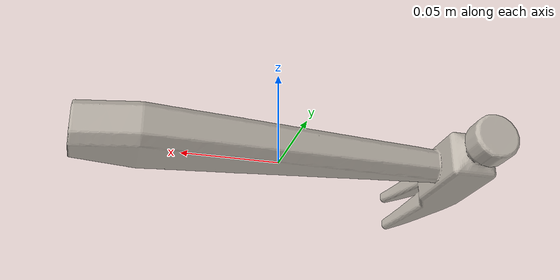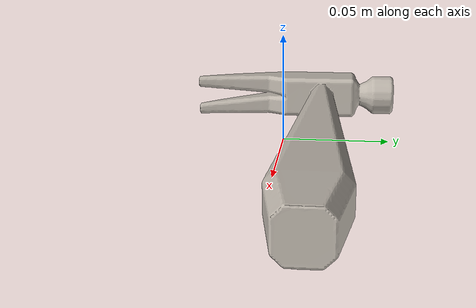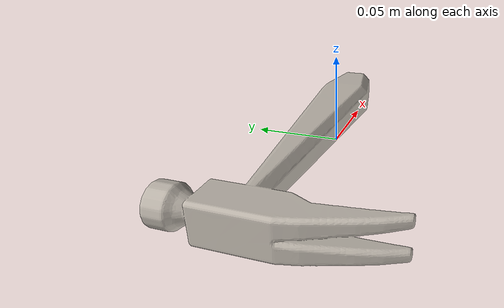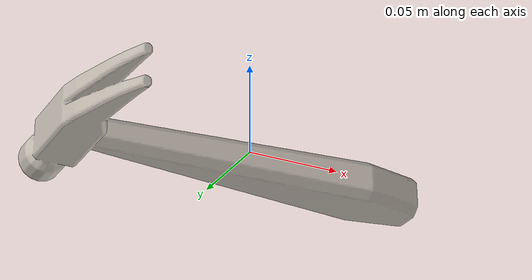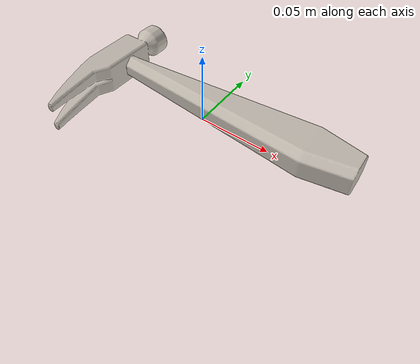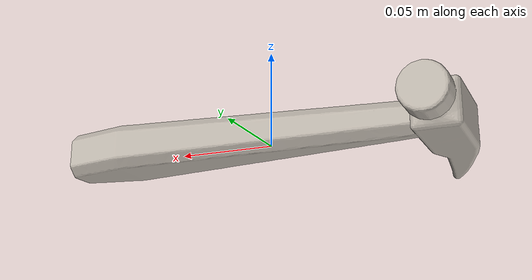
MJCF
<?xml version="1.0" encoding="utf-8"?>
<mujoco model="Hammer">
  <default>
    <default class="visual">
      <geom group="2" type="mesh" contype="0" conaffinity="0"/>
    </default>
    <default class="collision">
      <geom group="3" type="mesh"/>
    </default>
  </default>
  <asset>
    <texture type="2d" name="Hammer" file="Hammer/Hammer.png"/>
    <material name="material_0" texture="Hammer" specular="1.0" shininess="1.0"/>
    <mesh file="Hammer/Hammer.obj" name="Hammer"/>
    <mesh file="Hammer/Hammer_collision_0.obj" name="Hammer_collision_0"/>
    <mesh file="Hammer/Hammer_collision_1.obj" name="Hammer_collision_1"/>
    <mesh file="Hammer/Hammer_collision_2.obj" name="Hammer_collision_2"/>
    <mesh file="Hammer/Hammer_collision_3.obj" name="Hammer_collision_3"/>
    <mesh file="Hammer/Hammer_collision_4.obj" name="Hammer_collision_4"/>
    <mesh file="Hammer/Hammer_collision_5.obj" name="Hammer_collision_5"/>
    <mesh file="Hammer/Hammer_collision_6.obj" name="Hammer_collision_6"/>
  </asset>
  <worldbody>
    <body name="Hammer">
      <inertial mass="0.1" diaginertia="0.001 0.001 0.001" pos="0 0 0"/>
      <geom material="material_0" mesh="Hammer" class="visual"/>
      <geom mesh="Hammer_collision_0" rgba="0.9695077914321384 0.4977500394712008 0.7649015325914064 1" class="collision"/>
      <geom mesh="Hammer_collision_1" rgba="0.511295611005278 0.6968834135394172 0.578289586108792 1" class="collision"/>
      <geom mesh="Hammer_collision_2" rgba="0.21530565979009286 0.08883476544222102 0.4158531240754342 1" class="collision"/>
      <geom mesh="Hammer_collision_3" rgba="0.6747530207924015 0.8661844995923271 0.008440894724891512 1" class="collision"/>
      <geom mesh="Hammer_collision_4" rgba="0.9029412230092946 0.7705452922779853 0.46295910383016636 1" class="collision"/>
      <geom mesh="Hammer_collision_5" rgba="0.4416893709279647 0.5583420646936583 0.3540399655876343 1" class="collision"/>
      <geom mesh="Hammer_collision_6" rgba="0.26050146350102854 0.6617201258873628 0.7363520630550819 1" class="collision"/>
    </body>
  </worldbody>
</mujoco>
